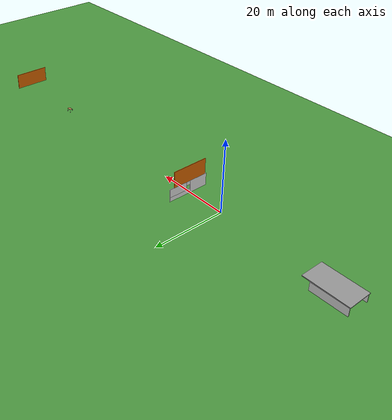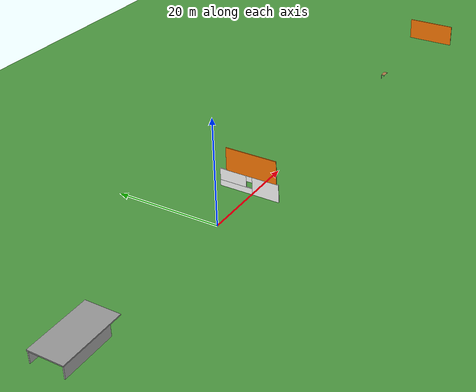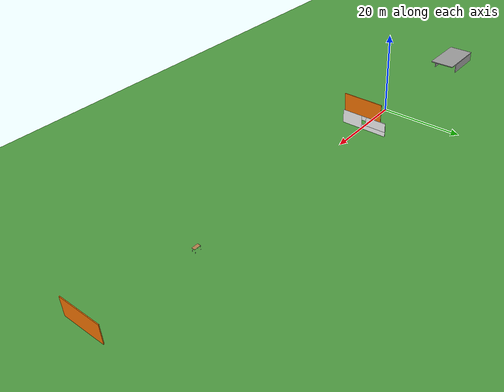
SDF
<sdf version="1.5">
 <world name="default">
  <spherical_coordinates>
   <latitude_deg>44.807560185016946</latitude_deg>
   <longitude_deg>-0.5972915127004879</longitude_deg>
   <surface_model>EARTH_WGS84</surface_model>
   <elevation>0</elevation>
   <heading_deg>0</heading_deg>
  </spherical_coordinates>
  <physics name="default_physics" default="0" type="ode">
   <real_time_update_rate>1000</real_time_update_rate>
   <max_step_size>0.001</max_step_size>
   <real_time_factor>1</real_time_factor>
   <max_contacts>20</max_contacts>
   <gravity>0 0 -9.81</gravity>
   <magnetic_field>0 2.1e-05 -4.3e-05</magnetic_field>
   <ode>
    <solver>
     <type>world</type>
     <min_step_size>0.0001</min_step_size>
     <iters>50</iters>
     <precon_iters>0</precon_iters>
     <sor>1.4</sor>
     <use_dynamic_moi_rescaling>1</use_dynamic_moi_rescaling>
    </solver>
    <constraints>
     <cfm>0</cfm>
     <erp>0.2</erp>
     <contact_max_correcting_vel>100</contact_max_correcting_vel>
     <contact_surface_layer>0.001</contact_surface_layer>
    </constraints>
   </ode>
  </physics>
  <atmosphere type="adiabatic">
   <temperature>298.15</temperature>
   <pressure>101325</pressure>
   <temperature_gradient>-0.0065</temperature_gradient>
  </atmosphere>
  <plugin name="fwman" filename="libsphinx_fwman.so">
   <spawn_point name="default"><pose>0 0 0.2 0 0 0</pose></spawn_point>
  </plugin>
  <plugin name="wind" filename="libsphinx_wind.so">
   <magnitude_mean>0.0</magnitude_mean>
   <direction_mean>0.0</direction_mean>
   <elevation_mean>0.0</elevation_mean>
   <magnitude_time_for_rise>10.0</magnitude_time_for_rise>
   <direction_time_for_rise>30.0</direction_time_for_rise>
   <elevation_time_for_rise>0.0</elevation_time_for_rise>
   <magnitude_expr>val*(1+0.05*sin(2*pi*time/15))</magnitude_expr>
   <direction_expr>360*time/60</direction_expr>
   <elevation_expr>0.03*noise()</elevation_expr>
  </plugin>
  <model name="grass_plane">
   <static>1</static>
   <link name="link">
    <collision name="collision">
     <geometry><plane><normal>0 0 1</normal><size>2000 2000</size></plane></geometry>
     <surface><friction><ode><mu>100</mu><mu2>50</mu2></ode></friction></surface>
    </collision>
    <visual name="visual">
     <cast_shadows>0</cast_shadows>
     <geometry><plane><normal>0 0 1</normal><size>2000 2000</size></plane></geometry>
     <material>
      <script>
       <uri>model://grass_plane/materials/scripts</uri>
       <uri>model://grass_plane/materials/textures</uri>
       <name>Grass/Grass</name>
      </script>
     </material>
    </visual>
   </link>
  </model>
  <light name="sun" type="directional">
   <pose>0 0 10 0 -0 0</pose>
   <diffuse>0.8 0.8 0.8 1</diffuse>
   <specular>0.2 0.2 0.2 1</specular>
   <attenuation>
    <range>1000</range>
    <constant>0.9</constant>
    <linear>0.01</linear>
    <quadratic>0.001</quadratic>
   </attenuation>
   <direction>-0.5 0.1 -0.9</direction>
  </light>
  <scene>
   <sky><time>8</time><clouds><speed>12</speed></clouds></sky>
   <grid>0</grid>
   <origin_visual>0</origin_visual>
   <ambient>0.4 0.4 0.4 1</ambient>
   <background>0.7 0.7 0.7 1</background>
   <shadows>0</shadows>
  </scene>
  <model name="hallway">
   <static>1</static>
   <pose>-33 3.5 -1 0 -0 0</pose>
   <link name="model::unit_box_2">
    <pose>-0.411848 -2.37857 3.24717 0 -0 0</pose>
    <visual name="unit_box_2_visual">
     <geometry><box><size>11.8887 6.43251 0.213817</size></box></geometry>
     <material>
      <script>
       <uri>model://hallway/materials/scripts</uri>
       <uri>model://hallway/materials/textures</uri>
       <name>Gazebo/Grey</name>
      </script>
     </material>
    </visual>
    <collision name="unit_box_2_collision">
     <geometry><box><size>11.8887 6.43251 0.213817</size></box></geometry>
    </collision>
   </link>
   <link name="model::unit_box_0_clone">
    <pose>-1.4209 -5.35869 1.74996 0 0 -1.56509</pose>
    <visual name="unit_box_0_clone_visual">
     <geometry><box><size>0.193816 9.597 2.74108</size></box></geometry>
     <material>
      <script>
       <uri>model://hallway/materials/scripts</uri>
       <uri>model://hallway/materials/textures</uri>
       <name>Wall/TagWall</name>
      </script>
     </material>
    </visual>
    <collision name="unit_box_0_clone_collision">
     <geometry><box><size>0.193816 9.597 2.74108</size></box></geometry>
    </collision>
   </link>
   <link name="model::unit_box_0">
    <pose>-1.43206 0.7765 1.74996 0 0 -1.5627</pose>
    <visual name="unit_box_0_visual">
     <geometry><box><size>0.193816 9.597 2.74108</size></box></geometry>
     <material>
      <script>
       <uri>model://hallway/materials/scripts</uri>
       <uri>model://hallway/materials/textures</uri>
       <name>Wall/TagWall</name>
      </script>
     </material>
    </visual>
    <collision name="unit_box_0_collision">
     <geometry><box><size>0.193816 9.597 2.74108</size></box></geometry>
    </collision>
   </link>
   <joint name="model::unit_box_2_JOINT_7" type="universal">
    <parent>model::unit_box_2</parent>
    <child>model::unit_box_0</child>
    <axis>
     <xyz>1 0 0</xyz>
     <use_parent_model_frame>0</use_parent_model_frame>
     <limit><lower>-3.14</lower><upper>3.14</upper></limit>
     <dynamics><spring_reference>0</spring_reference><spring_stiffness>0</spring_stiffness></dynamics>
    </axis>
    <axis2>
     <xyz>0 1 0</xyz>
     <use_parent_model_frame>0</use_parent_model_frame>
     <limit><lower>-3.14</lower><upper>3.14</upper></limit>
     <dynamics><spring_reference>0</spring_reference><spring_stiffness>0</spring_stiffness></dynamics>
    </axis2>
   </joint>
   <joint name="model::unit_box_2_JOINT_6" type="universal">
    <parent>model::unit_box_2</parent>
    <child>model::unit_box_0_clone</child>
    <axis>
     <xyz>1 0 0</xyz>
     <use_parent_model_frame>0</use_parent_model_frame>
     <limit><lower>-3.14</lower><upper>3.14</upper></limit>
     <dynamics><spring_reference>0</spring_reference><spring_stiffness>0</spring_stiffness></dynamics>
    </axis>
    <axis2>
     <xyz>0 1 0</xyz>
     <use_parent_model_frame>0</use_parent_model_frame>
     <limit><lower>-3.14</lower><upper>3.14</upper></limit>
     <dynamics><spring_reference>0</spring_reference><spring_stiffness>0</spring_stiffness></dynamics>
    </axis2>
   </joint>
   <joint name="model::unit_box_0_clone_JOINT_5" type="universal">
    <parent>model::unit_box_0_clone</parent>
    <child>model::unit_box_0</child>
    <axis>
     <xyz>1 0 0</xyz>
     <use_parent_model_frame>0</use_parent_model_frame>
     <limit><lower>-3.14</lower><upper>3.14</upper></limit>
     <dynamics><spring_reference>0</spring_reference><spring_stiffness>0</spring_stiffness></dynamics>
    </axis>
    <axis2>
     <xyz>0 1 0</xyz>
     <use_parent_model_frame>0</use_parent_model_frame>
     <limit><lower>-3.14</lower><upper>3.14</upper></limit>
     <dynamics><spring_reference>0</spring_reference><spring_stiffness>0</spring_stiffness></dynamics>
    </axis2>
   </joint>
   <joint name="model::unit_box_0_clone_JOINT_3" type="universal">
    <parent>model::unit_box_0_clone</parent>
    <child>model::unit_box_2</child>
    <axis>
     <xyz>1 0 0</xyz>
     <use_parent_model_frame>0</use_parent_model_frame>
     <limit><lower>-3.14</lower><upper>3.14</upper></limit>
     <dynamics><spring_reference>0</spring_reference><spring_stiffness>0</spring_stiffness></dynamics>
    </axis>
    <axis2>
     <xyz>0 1 0</xyz>
     <use_parent_model_frame>0</use_parent_model_frame>
     <limit><lower>-3.14</lower><upper>3.14</upper></limit>
     <dynamics><spring_reference>0</spring_reference><spring_stiffness>0</spring_stiffness></dynamics>
    </axis2>
   </joint>
   <joint name="model::unit_box_0_JOINT_2" type="universal">
    <parent>model::unit_box_0</parent>
    <child>model::unit_box_0_clone</child>
    <axis>
     <xyz>1 0 0</xyz>
     <use_parent_model_frame>0</use_parent_model_frame>
     <limit><lower>-3.14</lower><upper>3.14</upper></limit>
     <dynamics><spring_reference>0</spring_reference><spring_stiffness>0</spring_stiffness></dynamics>
    </axis>
    <axis2>
     <xyz>0 1 0</xyz>
     <use_parent_model_frame>0</use_parent_model_frame>
     <limit><lower>-3.14</lower><upper>3.14</upper></limit>
     <dynamics><spring_reference>0</spring_reference><spring_stiffness>0</spring_stiffness></dynamics>
    </axis2>
   </joint>
   <joint name="model::unit_box_0_JOINT_4" type="universal">
    <parent>model::unit_box_0</parent>
    <child>model::unit_box_2</child>
    <axis>
     <xyz>1 0 0</xyz>
     <use_parent_model_frame>0</use_parent_model_frame>
     <limit><lower>-3.14</lower><upper>3.14</upper></limit>
     <dynamics><spring_reference>0</spring_reference><spring_stiffness>0</spring_stiffness></dynamics>
    </axis>
    <axis2>
     <xyz>0 1 0</xyz>
     <use_parent_model_frame>0</use_parent_model_frame>
     <limit><lower>-3.14</lower><upper>3.14</upper></limit>
     <dynamics><spring_reference>0</spring_reference><spring_stiffness>0</spring_stiffness></dynamics>
    </axis2>
   </joint>
   <joint name="model::unit_box_2_JOINT_1" type="universal">
    <parent>model::unit_box_2</parent>
    <child>model::unit_box_0_clone</child>
    <axis>
     <xyz>1 0 0</xyz>
     <use_parent_model_frame>0</use_parent_model_frame>
     <limit><lower>-3.14</lower><upper>3.14</upper></limit>
     <dynamics><spring_reference>0</spring_reference><spring_stiffness>0</spring_stiffness></dynamics>
    </axis>
    <axis2>
     <xyz>0 1 0</xyz>
     <use_parent_model_frame>0</use_parent_model_frame>
     <limit><lower>-3.14</lower><upper>3.14</upper></limit>
     <dynamics><spring_reference>0</spring_reference><spring_stiffness>0</spring_stiffness></dynamics>
    </axis2>
   </joint>
   <joint name="model::unit_box_2_JOINT_0" type="universal">
    <parent>model::unit_box_2</parent>
    <child>model::unit_box_0</child>
    <axis>
     <xyz>1 0 0</xyz>
     <use_parent_model_frame>0</use_parent_model_frame>
     <limit><lower>-3.14</lower><upper>3.14</upper></limit>
     <dynamics><spring_reference>0</spring_reference><spring_stiffness>0</spring_stiffness></dynamics>
    </axis>
    <axis2>
     <xyz>0 1 0</xyz>
     <use_parent_model_frame>0</use_parent_model_frame>
     <limit><lower>-3.14</lower><upper>3.14</upper></limit>
     <dynamics><spring_reference>0</spring_reference><spring_stiffness>0</spring_stiffness></dynamics>
    </axis2>
   </joint>
   <static>1</static>
  </model>
  <model name="wall1">
   <static>1</static>
   <pose>11.18 5.7 3.49 0 -0 0</pose>
   <link name="wall::Wall_0">
    <collision name="Wall_0_Collision">
     <geometry><box><size>10 0.15 4.5</size></box></geometry>
     <pose>0 0 2.25 0 -0 0</pose>
    </collision>
    <visual name="Wall_0_Visual">
     <pose>0 0 2.25 0 -0 0</pose>
     <geometry><box><size>10 0.15 4.5</size></box></geometry>
     <material>
      <script>
       <uri>model://wall/materials/scripts</uri>
       <uri>model://wall/materials/textures</uri>
       <name>Wall/NiceWall</name>
      </script>
      <ambient>0.996078 0.47451 0.0196078 1</ambient>
     </material>
    </visual>
    <pose>-0.23 -5.575 0 0 0 -1.5708</pose>
   </link>
   <static>1</static>
  </model>
  <model name="window">
   <static>1</static>
   <pose>9.3 0.7 0 0 -0 1.57</pose>
   <link name="window2::Wall_0">
    <pose>-0.12 -1.66 0 0 -0 0</pose>
    <visual name="Wall_0_Visual_0">
     <pose>-3.2425 0 1.75 0 -0 0</pose>
     <geometry><box><size>5.265 0.15 3.5</size></box></geometry>
     <material>
      <script>
       <uri>model://window_door/materials/scripts</uri>
       <uri>model://window_door/materials/textures</uri>
       <name>Wall/NiceWall</name>
      </script>
      <ambient>1 1 1 1</ambient>
     </material>
    </visual>
    <collision name="Wall_0_Collision_0">
     <geometry><box><size>5.265 0.15 3.5</size></box></geometry>
     <pose>-3.2425 0 1.75 0 -0 0</pose>
    </collision>
    <visual name="Wall_0_Visual_1">
     <pose>2.6325 0 0.6 0 -0 0</pose>
     <geometry><box><size>6.485 0.15 1.2</size></box></geometry>
     <material>
      <script>
       <uri>model://window_door/materials/scripts</uri>
       <uri>model://window_door/materials/textures</uri>
       <name>Wall/NiceWall</name>
      </script>
      <ambient>1 1 1 1</ambient>
     </material>
    </visual>
    <collision name="Wall_0_Collision_1">
     <geometry><box><size>6.485 0.15 1.2</size></box></geometry>
     <pose>2.6325 0 0.6 0 -0 0</pose>
    </collision>
    <visual name="Wall_0_Visual_2">
     <pose>3.2325 0 2.35 0 -0 0</pose>
     <geometry><box><size>5.285 0.15 2.3</size></box></geometry>
     <material>
      <script>
       <uri>model://window_door/materials/scripts</uri>
       <uri>model://window_door/materials/textures</uri>
       <name>Wall/NiceWall</name>
      </script>
      <ambient>1 1 1 1</ambient>
     </material>
    </visual>
    <collision name="Wall_0_Collision_2">
     <geometry><box><size>5.285 0.15 2.3</size></box></geometry>
     <pose>3.2325 0 2.35 0 -0 0</pose>
    </collision>
    <visual name="Wall_0_Visual_3">
     <pose>-0.01 0 2.95 0 -0 0</pose>
     <geometry><box><size>1.2 0.15 1.1</size></box></geometry>
     <material>
      <script>
       <uri>model://window_door/materials/scripts</uri>
       <uri>model://window_door/materials/textures</uri>
       <name>Wall/NiceWall</name>
      </script>
      <ambient>1 1 1 1</ambient>
     </material>
    </visual>
    <collision name="Wall_0_Collision_3">
     <geometry><box><size>1.2 0.15 1.1</size></box></geometry>
     <pose>-0.01 0 2.95 0 -0 0</pose>
    </collision>
   </link>
   <static>1</static>
  </model>
  <model name="table">
   <static>1</static>
   <pose>65 -0.5 0 0 -0 0</pose>
   <static>1</static>
   <link name="table::link">
    <collision name="surface">
     <pose>0 0 1 0 -0 0</pose>
     <geometry><box><size>1.5 0.8 0.03</size></box></geometry>
     <surface><friction><ode><mu>0.6</mu><mu2>0.6</mu2></ode></friction></surface>
    </collision>
    <visual name="visual1">
     <pose>0 0 1 0 -0 0</pose>
     <geometry><box><size>1.5 0.8 0.03</size></box></geometry>
     <material>
      <script><uri>file://media/materials/scripts/gazebo.material</uri><name>Gazebo/Wood</name></script>
     </material>
    </visual>
    <collision name="front_left_leg">
     <pose>0.68 0.38 0.5 0 -0 0</pose>
     <geometry><cylinder><radius>0.02</radius><length>1</length></cylinder></geometry>
    </collision>
    <visual name="front_left_leg">
     <pose>0.68 0.38 0.5 0 -0 0</pose>
     <geometry><cylinder><radius>0.02</radius><length>1</length></cylinder></geometry>
     <material>
      <script><uri>file://media/materials/scripts/gazebo.material</uri><name>Gazebo/Grey</name></script>
     </material>
    </visual>
    <collision name="front_right_leg">
     <pose>0.68 -0.38 0.5 0 -0 0</pose>
     <geometry><cylinder><radius>0.02</radius><length>1</length></cylinder></geometry>
    </collision>
    <visual name="front_right_leg">
     <pose>0.68 -0.38 0.5 0 -0 0</pose>
     <geometry><cylinder><radius>0.02</radius><length>1</length></cylinder></geometry>
     <material>
      <script><uri>file://media/materials/scripts/gazebo.material</uri><name>Gazebo/Grey</name></script>
     </material>
    </visual>
    <collision name="back_right_leg">
     <pose>-0.68 -0.38 0.5 0 -0 0</pose>
     <geometry><cylinder><radius>0.02</radius><length>1</length></cylinder></geometry>
    </collision>
    <visual name="back_right_leg">
     <pose>-0.68 -0.38 0.5 0 -0 0</pose>
     <geometry><cylinder><radius>0.02</radius><length>1</length></cylinder></geometry>
     <material>
      <script><uri>file://media/materials/scripts/gazebo.material</uri><name>Gazebo/Grey</name></script>
     </material>
    </visual>
    <collision name="back_left_leg">
     <pose>-0.68 0.38 0.5 0 -0 0</pose>
     <geometry><cylinder><radius>0.02</radius><length>1</length></cylinder></geometry>
    </collision>
    <visual name="back_left_leg">
     <pose>-0.68 0.38 0.5 0 -0 0</pose>
     <geometry><cylinder><radius>0.02</radius><length>1</length></cylinder></geometry>
     <material>
      <script><uri>file://media/materials/scripts/gazebo.material</uri><name>Gazebo/Grey</name></script>
     </material>
    </visual>
   </link>
  </model>
  <model name="wall2">
   <static>1</static>
   <pose>89 4 0 0 -0 0</pose>
   <link name="wall::Wall_0">
    <collision name="Wall_0_Collision">
     <geometry><box><size>10 0.15 4.5</size></box></geometry>
     <pose>0 0 2.25 0 -0 0</pose>
    </collision>
    <visual name="Wall_0_Visual">
     <pose>0 0 2.25 0 -0 0</pose>
     <geometry><box><size>10 0.15 4.5</size></box></geometry>
     <material>
      <script>
       <uri>model://wall/materials/scripts</uri>
       <uri>model://wall/materials/textures</uri>
       <name>Wall/NiceWall</name>
      </script>
      <ambient>0.996078 0.47451 0.0196078 1</ambient>
     </material>
    </visual>
    <pose>-0.23 -5.575 0 0 0 -1.5708</pose>
   </link>
   <static>1</static>
  </model>
 </world>
</sdf>
